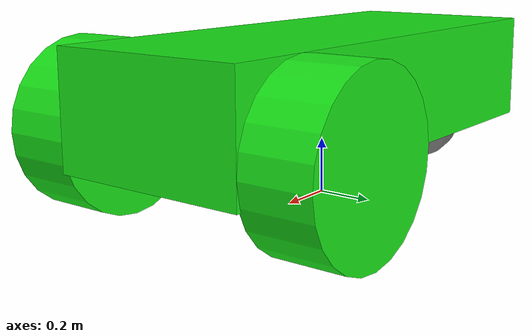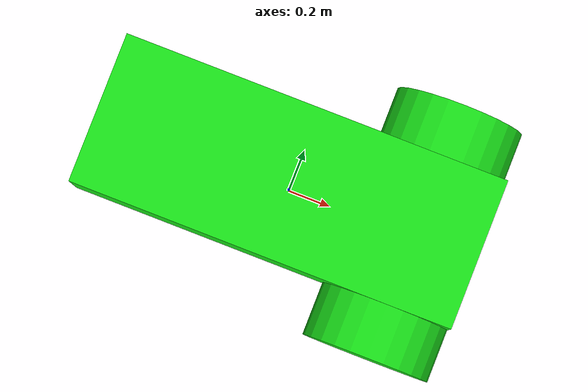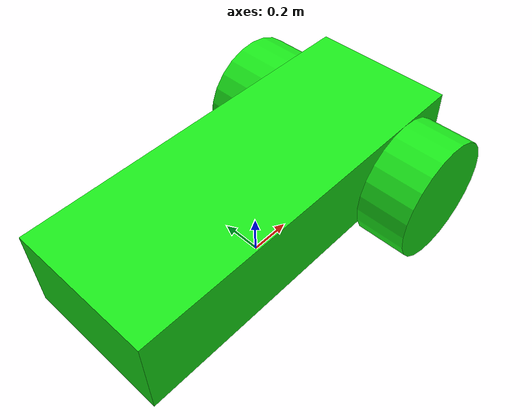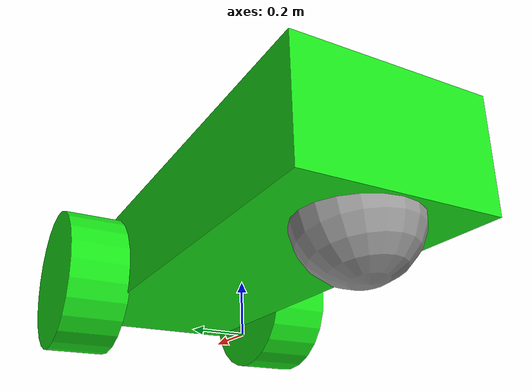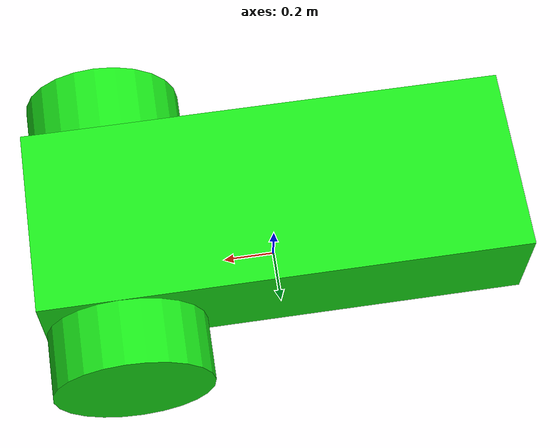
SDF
<?xml version='1.0'?>
<sdf version='1.6'>
  <model name='Vehicle'>
    <link name='link_0_clone'>
      <pose frame=''>0 -0 0.4 0 -0 0</pose>
      <inertial>
        <mass>8.4072</mass>
        <inertia>
          <ixx>0.444437</ixx>
          <ixy>0</ixy>
          <ixz>0</ixz>
          <iyy>1.39419</iyy>
          <iyz>0</iyz>
          <izz>1.60581</izz>
        </inertia>
        <pose frame=''>0 0 0 0 -0 0</pose>
      </inertial>
      <self_collide>0</self_collide>
      <kinematic>0</kinematic>
      <gravity>1</gravity>
      <visual name='visual'>
        <pose frame=''>0 0 0 0 -0 0</pose>
        <geometry>
          <box>
            <size>1.8 0.7 0.4</size>
          </box>
        </geometry>
        <material>
          <lighting>1</lighting>
          <script>
            <uri>file://media/materials/scripts/gazebo.material</uri>
            <name>Gazebo/Grey</name>
          </script>
          <shader type='pixel'>
            <normal_map>__default__</normal_map>
          </shader>
          <ambient>0.3 0.3 0.3 1</ambient>
          <diffuse>0.1 0.9 0.1 1</diffuse>
          <specular>0.01 0.01 0.01 1</specular>
          <emissive>0 0 0 1</emissive>
        </material>
        <transparency>0</transparency>
        <cast_shadows>1</cast_shadows>
      </visual>
      <collision name='collision'>
        <laser_retro>0</laser_retro>
        <max_contacts>10</max_contacts>
        <pose frame=''>0 0 0 0 -0 0</pose>
        <geometry>
          <box>
            <size>1.8 0.7 0.4</size>
          </box>
        </geometry>
        <surface>
          <friction>
            <ode>
              <mu>1</mu>
              <mu2>1</mu2>
              <fdir1>0 0 0</fdir1>
              <slip1>0</slip1>
              <slip2>0</slip2>
            </ode>
            <torsional>
              <coefficient>1</coefficient>
              <patch_radius>0</patch_radius>
              <surface_radius>0</surface_radius>
              <use_patch_radius>1</use_patch_radius>
              <ode>
                <slip>0</slip>
              </ode>
            </torsional>
          </friction>
          <bounce>
            <restitution_coefficient>0</restitution_coefficient>
            <threshold>1e+06</threshold>
          </bounce>
          <contact>
            <collide_without_contact>0</collide_without_contact>
            <collide_without_contact_bitmask>1</collide_without_contact_bitmask>
            <collide_bitmask>1</collide_bitmask>
            <ode>
              <soft_cfm>0</soft_cfm>
              <soft_erp>0.2</soft_erp>
              <kp>1e+13</kp>
              <kd>1</kd>
              <max_vel>0.01</max_vel>
              <min_depth>0</min_depth>
            </ode>
            <bullet>
              <split_impulse>1</split_impulse>
              <split_impulse_penetration_threshold>-0.01</split_impulse_penetration_threshold>
              <soft_cfm>0</soft_cfm>
              <soft_erp>0.2</soft_erp>
              <kp>1e+13</kp>
              <kd>1</kd>
            </bullet>
          </contact>
        </surface>
      </collision>
    </link>
    <link name='link_0'>
      <pose frame=''>0.6 0.467205 0.3 1.5707 0.03 0</pose>
      <inertial>
        <mass>1</mass>
        <inertia>
          <ixx>0.145833</ixx>
          <ixy>0</ixy>
          <ixz>0</ixz>
          <iyy>0.145833</iyy>
          <iyz>0</iyz>
          <izz>0.125</izz>
        </inertia>
        <pose frame=''>0 0 0 0 -0 0</pose>
      </inertial>
      <self_collide>0</self_collide>
      <kinematic>0</kinematic>
      <visual name='visual'>
        <pose frame=''>0 0 0 0 -0 0</pose>
        <geometry>
          <cylinder>
            <radius>0.3</radius>
            <length>0.25</length>
          </cylinder>
        </geometry>
        <material>
          <lighting>1</lighting>
          <script>
            <uri>file://media/materials/scripts/gazebo.material</uri>
            <name>Gazebo/Grey</name>
          </script>
          <shader type='pixel'>
            <normal_map>__default__</normal_map>
          </shader>
          <ambient>0.3 0.3 0.3 1</ambient>
          <diffuse>0.1 0.9 0.1 1</diffuse>
          <specular>0.01 0.01 0.01 1</specular>
          <emissive>0 0 0 1</emissive>
        </material>
        <transparency>0</transparency>
        <cast_shadows>1</cast_shadows>
      </visual>
      <collision name='collision'>
        <laser_retro>0</laser_retro>
        <max_contacts>10</max_contacts>
        <pose frame=''>0 0 0 0 -0 0</pose>
        <geometry>
          <cylinder>
            <radius>0.3</radius>
            <length>0.25</length>
          </cylinder>
        </geometry>
        <surface>
          <friction>
            <ode>
              <mu>1</mu>
              <mu2>1</mu2>
              <fdir1>0 0 0</fdir1>
              <slip1>0</slip1>
              <slip2>0</slip2>
            </ode>
            <torsional>
              <coefficient>1</coefficient>
              <patch_radius>0</patch_radius>
              <surface_radius>0</surface_radius>
              <use_patch_radius>1</use_patch_radius>
              <ode>
                <slip>0</slip>
              </ode>
            </torsional>
          </friction>
          <bounce>
            <restitution_coefficient>0</restitution_coefficient>
            <threshold>1e+06</threshold>
          </bounce>
          <contact>
            <collide_without_contact>0</collide_without_contact>
            <collide_without_contact_bitmask>1</collide_without_contact_bitmask>
            <collide_bitmask>1</collide_bitmask>
            <ode>
              <soft_cfm>0</soft_cfm>
              <soft_erp>0.2</soft_erp>
              <kp>1e+13</kp>
              <kd>1</kd>
              <max_vel>0.01</max_vel>
              <min_depth>0</min_depth>
            </ode>
            <bullet>
              <split_impulse>1</split_impulse>
              <split_impulse_penetration_threshold>-0.01</split_impulse_penetration_threshold>
              <soft_cfm>0</soft_cfm>
              <soft_erp>0.2</soft_erp>
              <kp>1e+13</kp>
              <kd>1</kd>
            </bullet>
          </contact>
        </surface>
      </collision>
    </link>
    <link name='link_0_0'>
      <pose frame=''>-0.690774 0.00168 0.2 -0.031665 0.139995 0.005148</pose>
      <inertial>
        <mass>1</mass>
        <inertia>
          <ixx>0.1</ixx>
          <ixy>0</ixy>
          <ixz>0</ixz>
          <iyy>0.1</iyy>
          <iyz>0</iyz>
          <izz>0.1</izz>
        </inertia>
        <pose frame=''>0 0 0 0 -0 0</pose>
      </inertial>
      <gravity>1</gravity>
      <self_collide>0</self_collide>
      <kinematic>0</kinematic>
      <visual name='visual'>
        <pose frame=''>0 0 0 0 -0 0</pose>
        <geometry>
          <sphere>
            <radius>0.2</radius>
          </sphere>
        </geometry>
        <material>
          <lighting>1</lighting>
          <script>
            <uri>file://media/materials/scripts/gazebo.material</uri>
            <name>Gazebo/Grey</name>
          </script>
          <shader type='pixel'>
            <normal_map>__default__</normal_map>
          </shader>
          <ambient>0.3 0.3 0.3 1</ambient>
          <diffuse>0.7 0.7 0.7 1</diffuse>
          <specular>0.01 0.01 0.01 1</specular>
          <emissive>0 0 0 1</emissive>
        </material>
        <transparency>0</transparency>
        <cast_shadows>1</cast_shadows>
      </visual>
      <collision name='collision'>
        <laser_retro>0</laser_retro>
        <max_contacts>10</max_contacts>
        <pose frame=''>0 0 0 0 -0 0</pose>
        <geometry>
          <sphere>
            <radius>0.2</radius>
          </sphere>
        </geometry>
        <surface>
          <friction>
            <ode>
              <mu>1</mu>
              <mu2>1</mu2>
              <fdir1>0 0 0</fdir1>
              <slip1>0</slip1>
              <slip2>0</slip2>
            </ode>
            <torsional>
              <coefficient>1</coefficient>
              <patch_radius>0</patch_radius>
              <surface_radius>0</surface_radius>
              <use_patch_radius>1</use_patch_radius>
              <ode>
                <slip>0</slip>
              </ode>
            </torsional>
          </friction>
          <bounce>
            <restitution_coefficient>0</restitution_coefficient>
            <threshold>1e+06</threshold>
          </bounce>
          <contact>
            <collide_without_contact>0</collide_without_contact>
            <collide_without_contact_bitmask>1</collide_without_contact_bitmask>
            <collide_bitmask>1</collide_bitmask>
            <ode>
              <soft_cfm>0</soft_cfm>
              <soft_erp>0.2</soft_erp>
              <kp>1e+13</kp>
              <kd>1</kd>
              <max_vel>0.01</max_vel>
              <min_depth>0</min_depth>
            </ode>
            <bullet>
              <split_impulse>1</split_impulse>
              <split_impulse_penetration_threshold>-0.01</split_impulse_penetration_threshold>
              <soft_cfm>0</soft_cfm>
              <soft_erp>0.2</soft_erp>
              <kp>1e+13</kp>
              <kd>1</kd>
            </bullet>
          </contact>
        </surface>
      </collision>
    </link>
    <link name='link_0_clone_0'>
      <pose frame=''>0.6 -0.475029 0.3 1.5707 -0 0</pose>
      <inertial>
        <mass>1</mass>
        <inertia>
          <ixx>0.145833</ixx>
          <ixy>0</ixy>
          <ixz>0</ixz>
          <iyy>0.145833</iyy>
          <iyz>0</iyz>
          <izz>0.125</izz>
        </inertia>
        <pose frame=''>0 0 0 0 -0 0</pose>
      </inertial>
      <self_collide>0</self_collide>
      <kinematic>0</kinematic>
      <visual name='visual'>
        <pose frame=''>0 0 0 0 -0 0</pose>
        <geometry>
          <cylinder>
            <radius>0.3</radius>
            <length>0.25</length>
          </cylinder>
        </geometry>
        <material>
          <lighting>1</lighting>
          <script>
            <uri>file://media/materials/scripts/gazebo.material</uri>
            <name>Gazebo/Grey</name>
          </script>
          <shader type='pixel'>
            <normal_map>__default__</normal_map>
          </shader>
          <ambient>0.3 0.3 0.3 1</ambient>
          <diffuse>0.1 0.9 0.1 1</diffuse>
          <specular>0.01 0.01 0.01 1</specular>
          <emissive>0 0 0 1</emissive>
        </material>
        <transparency>0</transparency>
        <cast_shadows>1</cast_shadows>
      </visual>
      <collision name='collision'>
        <laser_retro>0</laser_retro>
        <max_contacts>10</max_contacts>
        <pose frame=''>0 0 0 0 -0 0</pose>
        <geometry>
          <cylinder>
            <radius>0.3</radius>
            <length>0.25</length>
          </cylinder>
        </geometry>
        <surface>
          <friction>
            <ode>
              <mu>1</mu>
              <mu2>1</mu2>
              <fdir1>0 0 0</fdir1>
              <slip1>0</slip1>
              <slip2>0</slip2>
            </ode>
            <torsional>
              <coefficient>1</coefficient>
              <patch_radius>0</patch_radius>
              <surface_radius>0</surface_radius>
              <use_patch_radius>1</use_patch_radius>
              <ode>
                <slip>0</slip>
              </ode>
            </torsional>
          </friction>
          <bounce>
            <restitution_coefficient>0</restitution_coefficient>
            <threshold>1e+06</threshold>
          </bounce>
          <contact>
            <collide_without_contact>0</collide_without_contact>
            <collide_without_contact_bitmask>1</collide_without_contact_bitmask>
            <collide_bitmask>1</collide_bitmask>
            <ode>
              <soft_cfm>0</soft_cfm>
              <soft_erp>0.2</soft_erp>
              <kp>1e+13</kp>
              <kd>1</kd>
              <max_vel>0.01</max_vel>
              <min_depth>0</min_depth>
            </ode>
            <bullet>
              <split_impulse>1</split_impulse>
              <split_impulse_penetration_threshold>-0.01</split_impulse_penetration_threshold>
              <soft_cfm>0</soft_cfm>
              <soft_erp>0.2</soft_erp>
              <kp>1e+13</kp>
              <kd>1</kd>
            </bullet>
          </contact>
        </surface>
      </collision>
    </link>
    <joint name='link_0_clone_JOINT_0_0' type='ball'>
      <parent>link_0_clone</parent>
      <child>link_0_0</child>
      <pose frame=''>0 0 0 0 -0 0</pose>
      <physics>
        <ode>
          <limit>
            <cfm>0</cfm>
            <erp>0.2</erp>
          </limit>
          <suspension>
            <cfm>0</cfm>
            <erp>0.2</erp>
          </suspension>
        </ode>
      </physics>
    </joint>
    <joint name='link_0_clone_JOINT_0' type='revolute'>
      <parent>link_0_clone</parent>
      <child>link_0</child>
      <pose frame=''>0 0 0 0 -0 0</pose>
      <axis>
        <xyz>0 0 1</xyz>
        <use_parent_model_frame>0</use_parent_model_frame>
        <limit>
          <lower>-1.79769e+308</lower>
          <upper>1.79769e+308</upper>
          <effort>-1</effort>
          <velocity>-1</velocity>
        </limit>
        <dynamics>
          <spring_reference>0</spring_reference>
          <spring_stiffness>0</spring_stiffness>
          <damping>0</damping>
          <friction>0</friction>
        </dynamics>
      </axis>
      <physics>
        <ode>
          <limit>
            <cfm>0</cfm>
            <erp>0.2</erp>
          </limit>
          <suspension>
            <cfm>0</cfm>
            <erp>0.2</erp>
          </suspension>
        </ode>
      </physics>
    </joint>
    <joint name='link_0_clone_JOINT_1' type='revolute'>
      <parent>link_0_clone</parent>
      <child>link_0_clone_0</child>
      <pose frame=''>0 0 0 0 -0 0</pose>
      <axis>
        <xyz>0 0 1</xyz>
        <use_parent_model_frame>0</use_parent_model_frame>
        <limit>
          <lower>-1.79769e+308</lower>
          <upper>1.79769e+308</upper>
          <effort>-1</effort>
          <velocity>-1</velocity>
        </limit>
        <dynamics>
          <spring_reference>0</spring_reference>
          <spring_stiffness>0</spring_stiffness>
          <damping>0</damping>
          <friction>0</friction>
        </dynamics>
      </axis>
      <physics>
        <ode>
          <limit>
            <cfm>0</cfm>
            <erp>0.2</erp>
          </limit>
          <suspension>
            <cfm>0</cfm>
            <erp>0.2</erp>
          </suspension>
        </ode>
      </physics>
    </joint>
    <static>0</static>
    <allow_auto_disable>1</allow_auto_disable>
  </model>
</sdf>
